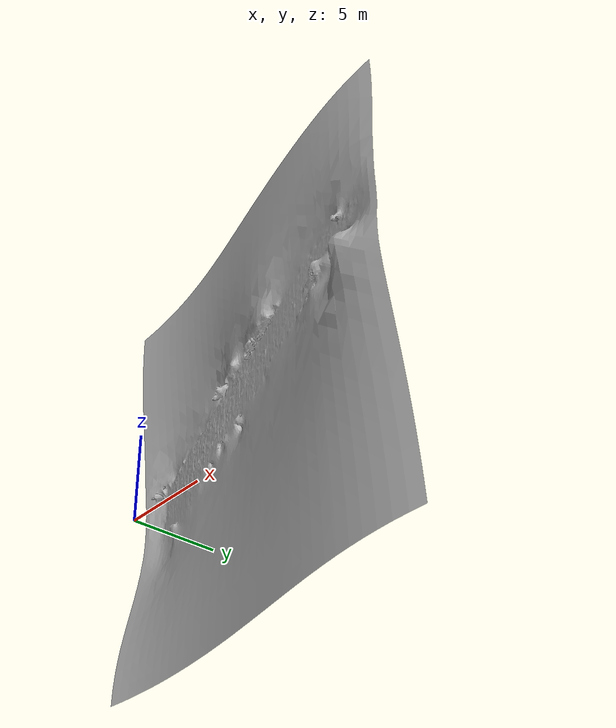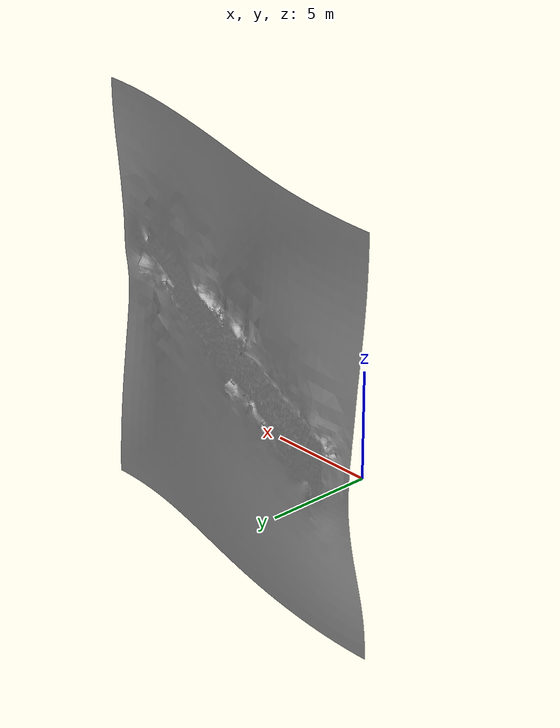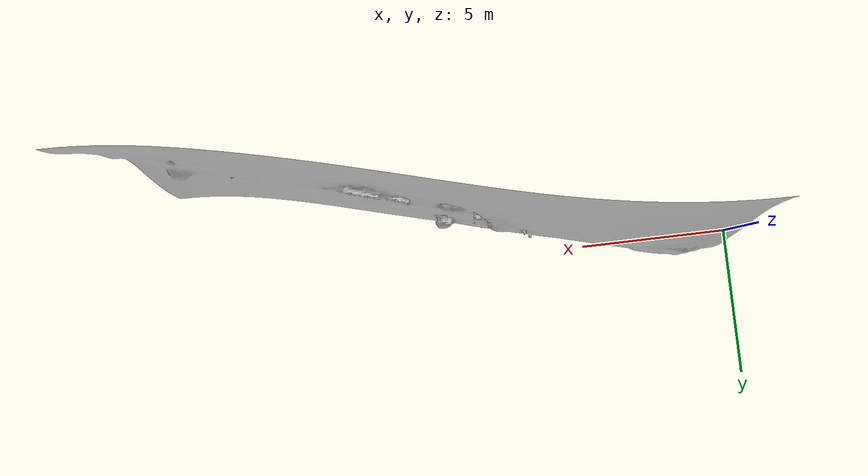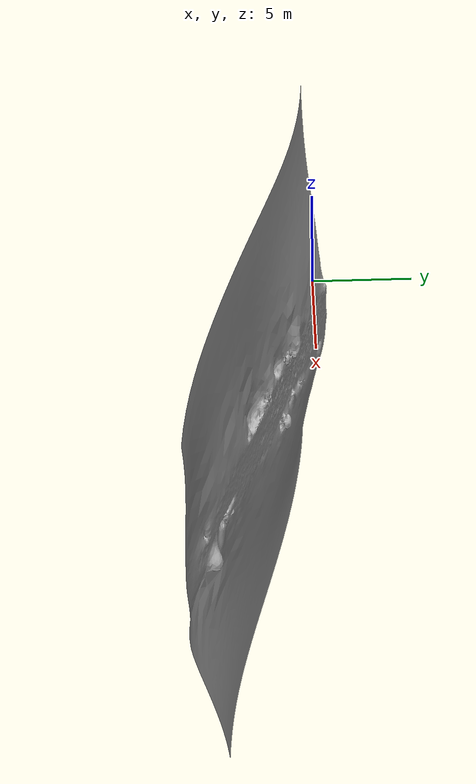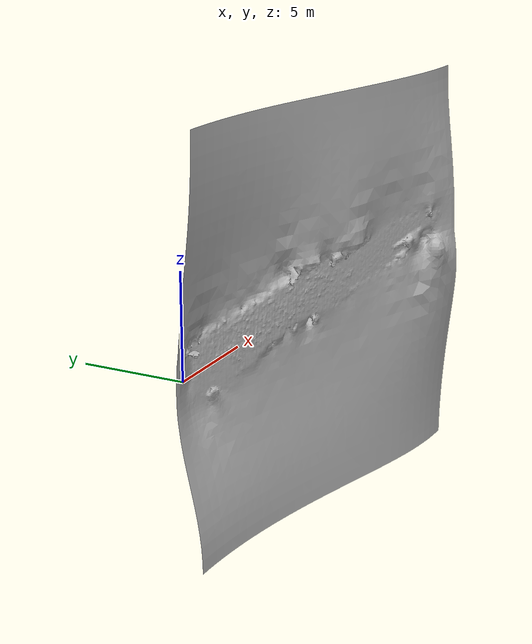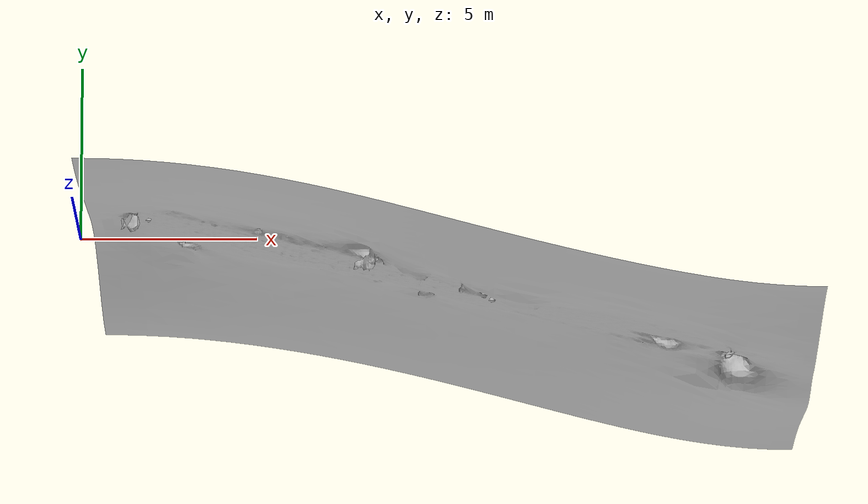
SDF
<?xml version="1.0" ?>
<sdf version="1.6">
  <model name="floor_demo">
    <static>true</static>
    <link name="link">
      <visual name="visual">
        <geometry>
          <mesh>
            <uri>model://floor_demo/floor_demo.dae</uri>
          </mesh>
        </geometry>
      </visual>
    </link>
  </model>
</sdf>
